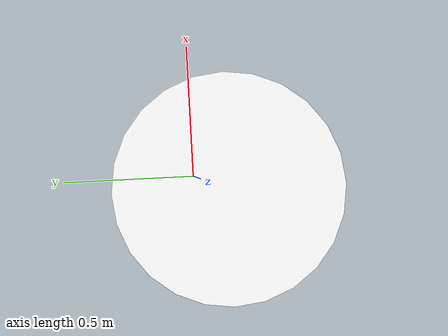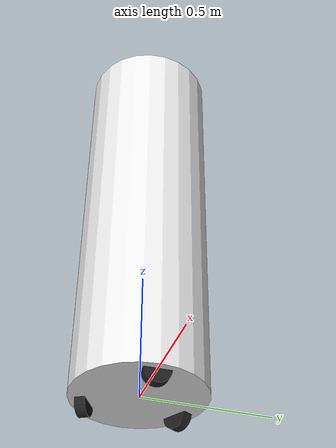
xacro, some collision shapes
<?xml version="1.0"?>
<robot xmlns:xacro="http://www.ros.org/wiki/xacro">

    <xacro:include filename="inertial_macros.xacro"/>

    <!-- links and joints go here -->

    <!-- The rest of the robot can be described from base_link, which is the centre point of the three driving wheels -->
    <link name="base_link">
    </link>

    <!-- chassis joint goes here. It connects chassis to base_link via fixed joint -->
    <joint name="chassis_joint" type="fixed">
        <parent link="base_link"/>
        <child link="chassis"/>
        <origin xyz="0 0 0"/>
    </joint>

    <!-- chassis description goes here -->
    <link name="chassis">
        <visual>
            <geometry>
                <!-- This works in Rviz -->
                <!-- This works in gazebo -->
                <mesh filename="$(find robocap_sim)/urdf/frame_ultra_low_poly.stl" scale="0.001 0.001 0.001"/>
            </geometry>
            <material name="white"/>
        </visual>
        <!-- physics model -->
        <collision>
            <origin xyz="0 0 0.77" rpy="0 0 0"/>
            <geometry>
                <cylinder length="1.54" radius="0.25"/>
            </geometry>
        </collision>
        <xacro:inertial_cylinder mass="20" length="1.54" radius="0.25">
            <origin xyz="0 0 0.77" rpy="0 0 0"/>
        </xacro:inertial_cylinder>
    </link>

    <joint name="laser_joint" type="fixed">
        <parent link="chassis"/>
        <child link="laser"/>
        <origin xyz="0 0 0.07" rpy="0 0 0"/>
    </joint>
    <link name="laser">
        <visual>
            <origin xyz="0 0 0" rpy="0 0 0"/>
            <geometry>
                <cylinder length="0.05" radius="0.05"/>
            </geometry>
            <material name="black"/>
        </visual>
    </link>

    <!-- gazebo specific description -->
    <gazebo reference="chassis">
        <material>Gazebo/White</material>
    </gazebo>

    <!-- WHEEL 1 (CLOCKWISE) -->
    <joint name="wheel_1_joint" type="continuous">
        <parent link="base_link"/>
        <child link="wheel_1"/>
        <origin xyz="0.2 0 0" rpy="0 -${pi/2} 0"/>
        <axis xyz="0 0 1"/>
    </joint>

    <link name="wheel_1">
        <visual>
            <geometry>
                <cylinder length="0.038" radius="0.05" />
            </geometry>
            <material name="black"/>
        </visual>
        <collision>
            <geometry>
                <cylinder length="0.038" radius="0.05" />
            </geometry>
        </collision>
        <xacro:inertial_cylinder mass="0.2" length="0.038" radius="0.05">
            <origin xyz="0 0 0" rpy="0 0 0"/>
        </xacro:inertial_cylinder>
    </link>

    <gazebo reference="wheel_1">
        <material>Gazebo/Black</material>
        <mu1>0.2</mu1>
        <mu2>1.5</mu2>
        <kp>10000000.0</kp>
        <kd>10000.0</kd>
        <fdir1>0 0 1</fdir1>
        <maxContacts>1</maxContacts>
    </gazebo>

    <!-- WHEEL 2 -->
    <joint name="wheel_2_joint" type="continuous">
        <parent link="base_link"/>
        <child link="wheel_2"/>
        <origin xyz="-0.1 -0.1732050808 0" rpy="0 ${pi/2} ${pi/3}"/>
        <axis xyz="0 0 1"/>
    </joint>

    <link name="wheel_2">
        <visual>
            <geometry>
                <cylinder length="0.038" radius="0.05" />
            </geometry>
            <material name="black"/>
        </visual>
        <collision>
            <geometry>
                <cylinder length="0.038" radius="0.05" />
            </geometry>
        </collision>
        <xacro:inertial_cylinder mass="0.2" length="0.038" radius="0.05">
            <origin xyz="0 0 0" rpy="0 0 0"/>
        </xacro:inertial_cylinder>
    </link>

    <gazebo reference="wheel_2">
        <material>Gazebo/Black</material>
        <mu1>0.2</mu1>
        <mu2>1.5</mu2>
        <kp>10000000.0</kp>
        <kd>10000.0</kd>
        <fdir1>0 0 1</fdir1>
        <maxContacts>1</maxContacts>
    </gazebo>

    <!-- WHEEL 3 -->
    <joint name="wheel_3_joint" type="continuous">
        <parent link="base_link"/>
        <child link="wheel_3"/>
        <origin xyz="-0.1 0.1732050808 0" rpy="0 ${pi/2} -${pi/3}"/>
        <axis xyz="0 0 1"/>
    </joint>

    <link name="wheel_3">
        <visual>
            <geometry>
                <cylinder length="0.038" radius="0.05" />
            </geometry>
            <material name="black"/>
        </visual>
        <collision>
            <geometry>
                <cylinder length="0.038" radius="0.05" />
            </geometry>
        </collision>
        <xacro:inertial_cylinder mass="0.2" length="0.038" radius="0.05">
            <origin xyz="0 0 0" rpy="0 0 0"/>
        </xacro:inertial_cylinder>
    </link>

    <gazebo reference="wheel_3">
        <material>Gazebo/Black</material>
        <mu1>0.2</mu1>
        <mu2>1.5</mu2>
        <kp>10000000.0</kp>
        <kd>10000.0</kd>
        <fdir1>0 0 1</fdir1>
        <maxContacts>1</maxContacts>
    </gazebo>

    <!-- Transmissions -->
    <transmission name="tran1">
        <type>transmission_interface/SimpleTransmission</type>
        <joint name="wheel_1_joint">
            <hardwareInterface>hardware_interface/ActuatorInterface</hardwareInterface>
        </joint>
        <actuator name="motor_1">
            <hardwareInterface>hardware_interface/ActuatorInterface</hardwareInterface>
            <mechanicalReduction>1</mechanicalReduction>
        </actuator>
    </transmission>

    <transmission name="tran2">
        <type>transmission_interface/SimpleTransmission</type>
        <joint name="wheel_2_joint">
            <hardwareInterface>hardware_interface/ActuatorInterface</hardwareInterface>
        </joint>
        <actuator name="motor_2">
            <hardwareInterface>hardware_interface/ActuatorInterface</hardwareInterface>
            <mechanicalReduction>1</mechanicalReduction>
        </actuator>
    </transmission>

    <transmission name="tran3">
        <type>transmission_interface/SimpleTransmission</type>
        <joint name="wheel_3_joint">
            <hardwareInterface>hardware_interface/ActuatorInterface</hardwareInterface>
        </joint>
        <actuator name="motor_3">
            <hardwareInterface>hardware_interface/ActuatorInterface</hardwareInterface>
            <mechanicalReduction>1</mechanicalReduction>
        </actuator>
    </transmission>

    <gazebo>
        <plugin name="gazebo_ros2_control" filename="libgazebo_ros2_control.so">
        </plugin>
    </gazebo>

</robot>
